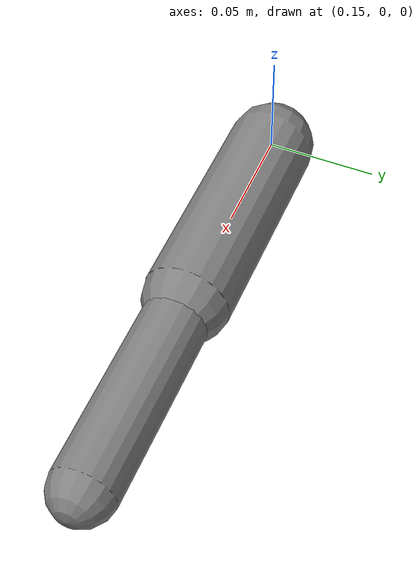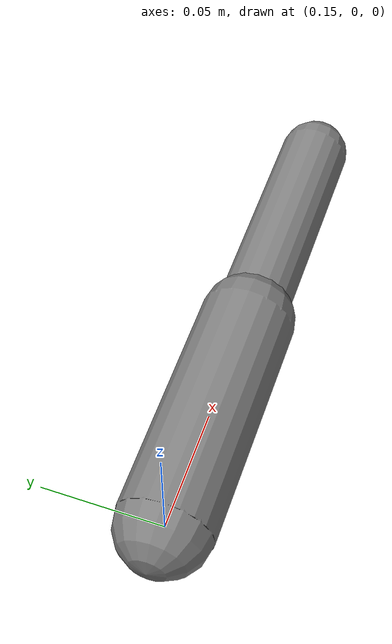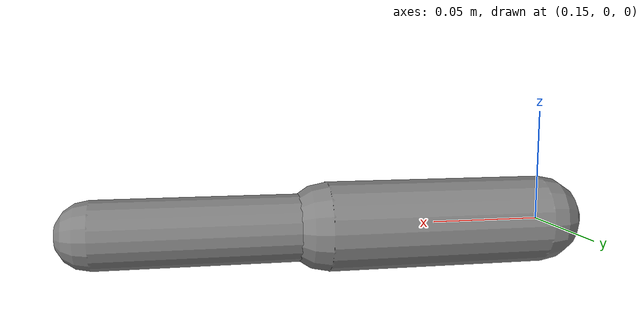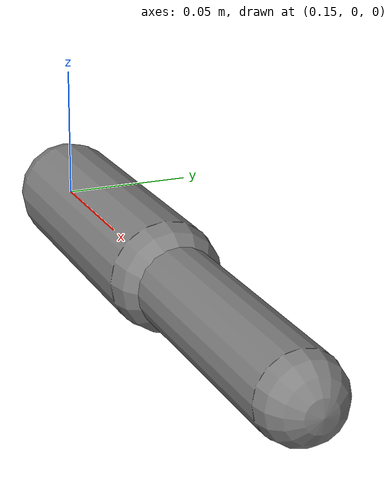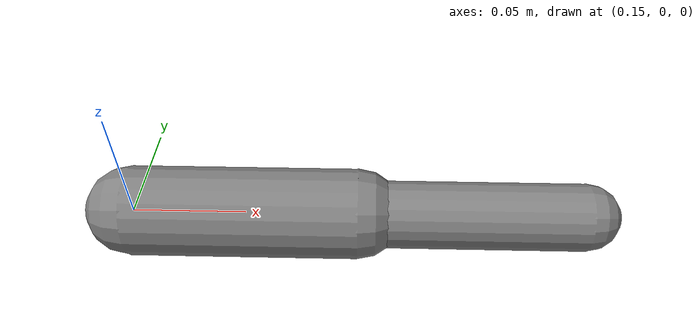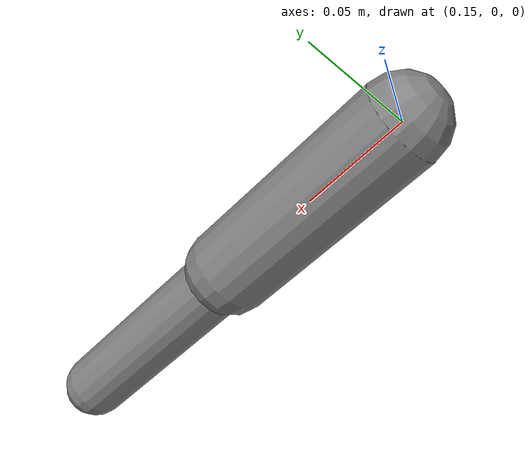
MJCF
<mujoco>

  <default>
    <joint damping=".01" frictionloss=".1"/>
  </default>

  <worldbody>
    <light pos="0 0 1"/>
    <body name="pendulum" pos="0.15 0 0">
      <joint name="hinge" axis="0 1 0"/>
      <geom type="capsule" size="0.02" fromto="0 0 0 .1 0 0"/>
      <body name="link1" pos="0.1 0 0">
        <joint name="slide" type="slide" axis="1 0 0" stiffness="200"/>
        <geom type="capsule" size="0.015" fromto="-.1 0 0 .1 0 0"/>
      </body>
    </body>
  </worldbody>

</mujoco>
